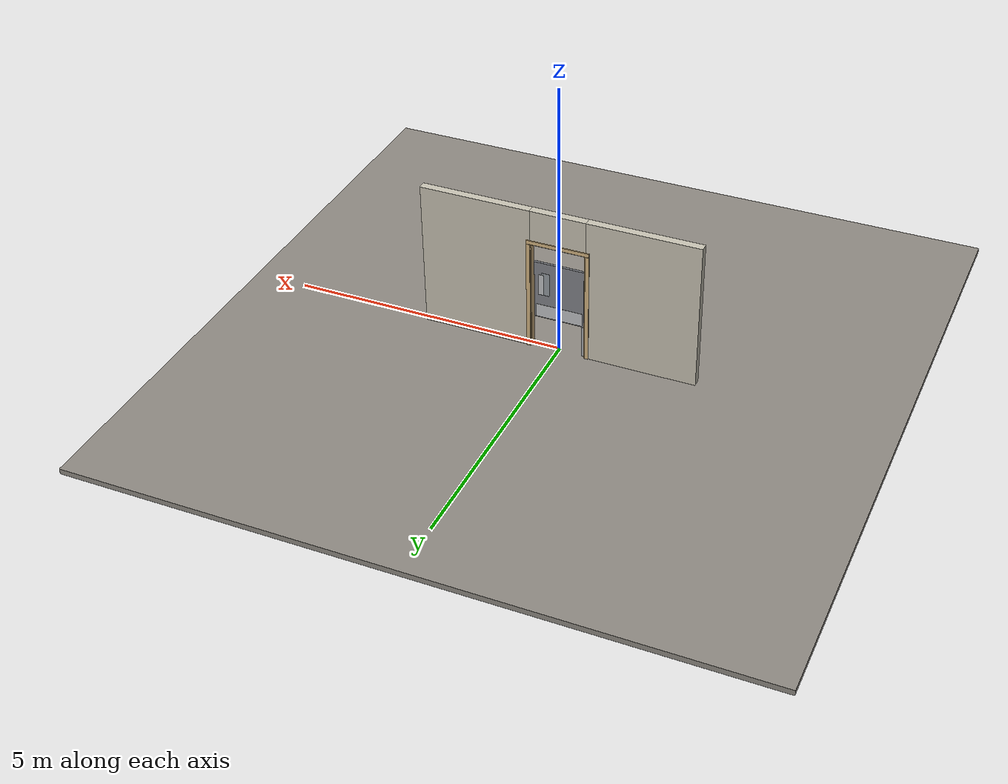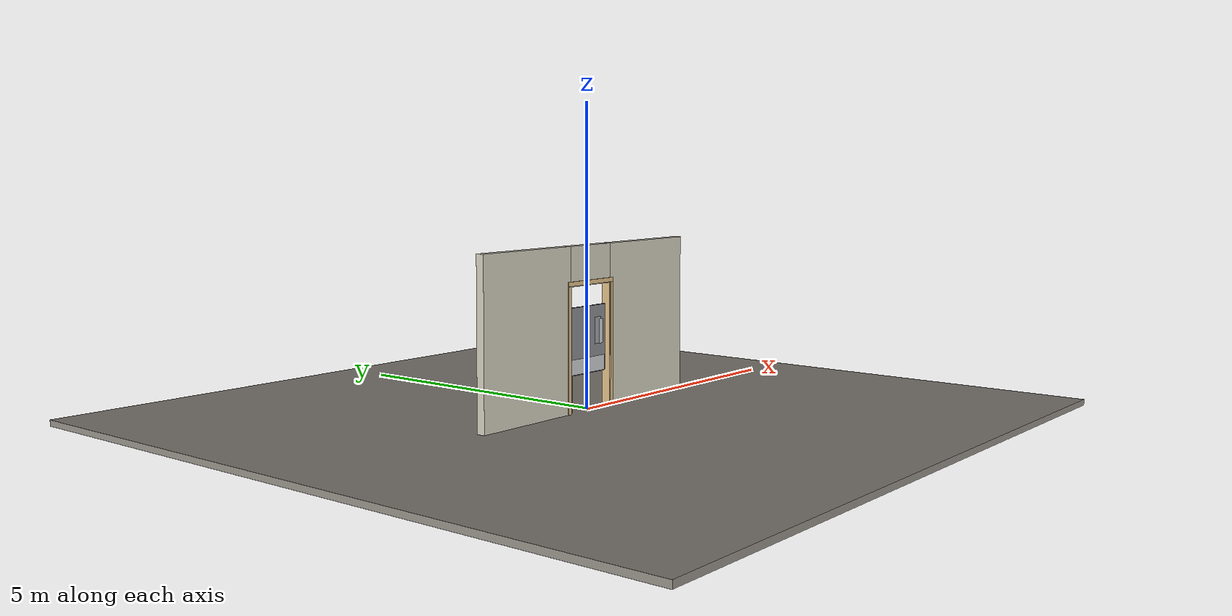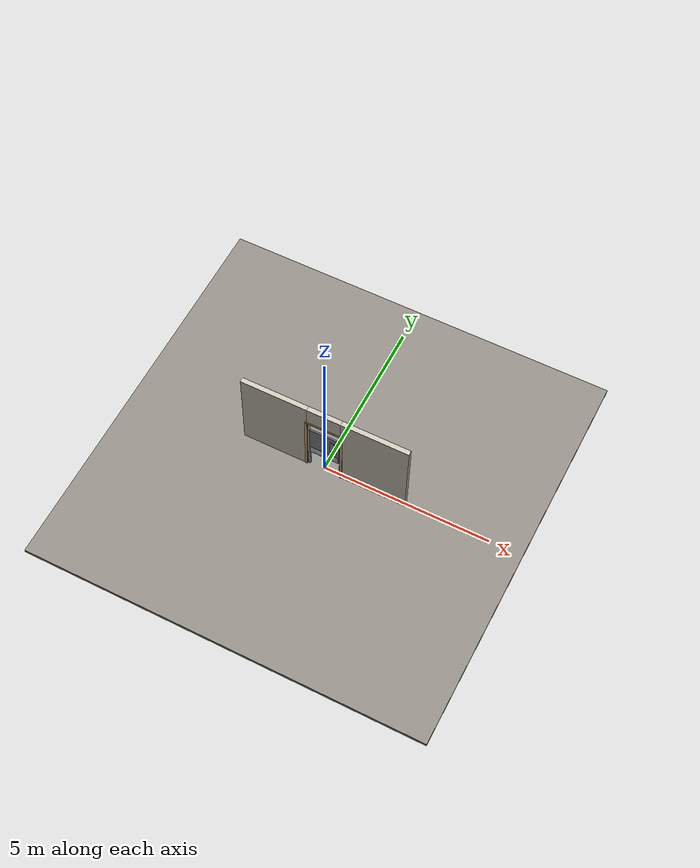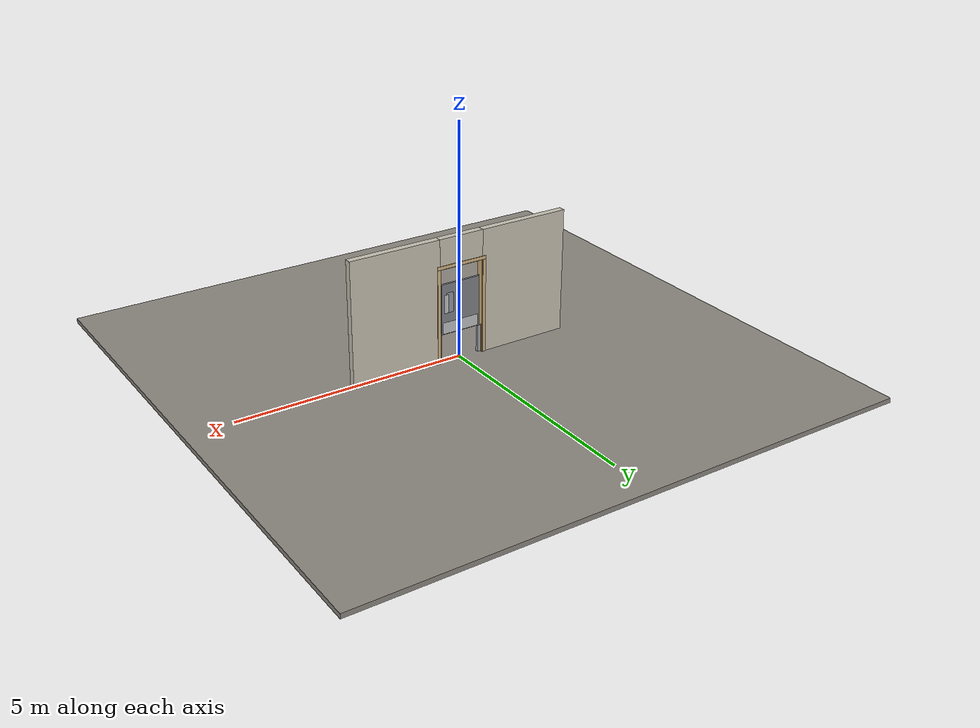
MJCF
<?xml version="1.0" ?>
<mujoco model="db0299_saloon_full">
  <compiler angle="radian" meshdir="../../hardware" texturedir="../../textures" autolimits="true" inertiafromgeom="false"/>
  <option timestep="0.002" integrator="implicitfast" cone="elliptic" impratio="10" noslip_iterations="3">
    <flag multiccd="enable"/>
  </option>
  <size memory="16M"/>
  <default>
    <geom condim="4" solref="0.005 1" solimp="0.95 0.99 0.001"/>
    <joint solreflimit="0.005 1" solimplimit="0.95 0.99 0.001"/>
    <tendon solreflimit="0.005 1"/>
    <equality solref="0.002 1"/>
  </default>
  <visual>
    <headlight ambient="0.4 0.4 0.4" diffuse="0.7 0.7 0.7" specular="0.2 0.2 0.2"/>
    <quality shadowsize="4096"/>
    <map znear="0.01" zfar="60"/>
  </visual>
  <asset>
    <material name="mat_floor" rgba="0.55 0.53 0.5 1" specular="0.2" shininess="0.15" reflectance="0"/>
    <material name="mat_wall" rgba="0.78 0.76 0.7 1" specular="0.2" shininess="0.1" reflectance="0"/>
    <material name="mat_frame" rgba="0.82 0.7 0.5 1" specular="0.2" shininess="0.45" reflectance="0"/>
    <material name="mat_leaf" rgba="0.5 0.51 0.53 1" specular="0.2" shininess="0.58" reflectance="0"/>
    <material name="mat_glass" rgba="0.85 0.92 0.95 0.25" specular="0.2" shininess="0.95" reflectance="0.1"/>
    <material name="mat_hinge" rgba="0.65 0.66 0.68 1" specular="0.74" shininess="0.5" reflectance="0.36"/>
    <material name="mat_op_stainless" rgba="0.75 0.76 0.77 1" specular="0.8" shininess="0.65" reflectance="0.4"/>
    <material name="mat_kick" rgba="0.75 0.76 0.77 1" specular="0.8" shininess="0.65" reflectance="0.4"/>
    <texture name="skybox" type="skybox" builtin="gradient" rgb1="0.6 0.7 0.85" rgb2="0.9 0.92 0.95" width="256" height="256"/>
  </asset>
  <worldbody>
    <light name="sun" pos="1.5 -2.5 4" dir="-0.3 0.5 -0.8" directional="true" diffuse="0.8 0.8 0.8" specular="0.3 0.3 0.3" castshadow="true"/>
    <light name="fill" pos="-1.5 2.5 3" dir="0.3 -0.5 -0.7" directional="true" diffuse="0.35 0.35 0.4" castshadow="false"/>
    <camera name="robot_view" pos="0 -2.546875 1.738125" xyaxes="1 0 0 0 0.26963 0.962964" fovy="52"/>
    <camera name="far_view" pos="0 2.546875 1.738125" xyaxes="-1 0 0 0 -0.26963 0.962964" fovy="52"/>
    <camera name="iso" pos="1.935625 -2.139375 2.145625" xyaxes="0.741536 0.670913 0 -0.242917 0.268487 0.932151" fovy="46"/>
    <camera name="detail_handle" pos="0.48 -0.8 1.28" xyaxes="0.97561 0.219512 0 -0.070934 0.315262 0.94635" fovy="38"/>
    <geom name="floor" type="box" size="6 6 0.05" pos="0 0 -0.05" material="mat_floor" group="0" contype="1" conaffinity="1" friction="0.8 0.005 0.0001" density="2400"/>
    <geom name="wall_left" type="box" size="0.9985 0.0725 1.35" pos="-1.5015 0 1.35" material="mat_wall" group="0" contype="1" conaffinity="1" friction="0.6 0.005 0.0001" density="800"/>
    <geom name="wall_right" type="box" size="0.9985 0.0725 1.35" pos="1.5015 0 1.35" material="mat_wall" group="0" contype="1" conaffinity="1" friction="0.6 0.005 0.0001" density="800"/>
    <geom name="wall_header" type="box" size="0.503 0.0725 0.3155" pos="0 0 2.3845" material="mat_wall" group="0" contype="1" conaffinity="1" friction="0.6 0.005 0.0001" density="800"/>
    <geom name="jamb_hinge" type="box" size="0.0095 0.0725 1.025" pos="-0.4935 0 1.025" material="mat_frame" group="0" contype="1" conaffinity="1" friction="0.6 0.005 0.0001" density="400"/>
    <geom name="jamb_strike" type="box" size="0.0095 0.0725 1.025" pos="0.4935 0 1.025" material="mat_frame" group="0" contype="1" conaffinity="1" friction="0.6 0.005 0.0001" density="400"/>
    <geom name="stud_strike" type="box" size="0.015 0.0725 1.025" pos="0.518 0 1.025" material="mat_wall" group="0" contype="1" conaffinity="1" friction="0.6 0.005 0.0001" density="500"/>
    <geom name="jamb_head" type="box" size="0.518 0.0725 0.0095" pos="0.015 0 2.0595" material="mat_frame" group="0" contype="1" conaffinity="1" friction="0.6 0.005 0.0001" density="400"/>
    <geom name="head_stud" type="box" size="0.518 0.0725 0.015" pos="0.015 0 2.084" material="mat_wall" group="0" contype="1" conaffinity="1" friction="0.6 0.005 0.0001" density="500"/>
    <geom name="casing_l_n" type="box" size="0.035 0.008 1.0345" pos="-0.533 -0.0805 1.025" material="mat_frame" group="2" contype="0" conaffinity="0" density="400"/>
    <geom name="casing_r_n" type="box" size="0.035 0.008 1.0345" pos="0.533 -0.0805 1.025" material="mat_frame" group="2" contype="0" conaffinity="0" density="400"/>
    <geom name="casing_h_n" type="box" size="0.568 0.008 0.035" pos="0 -0.0805 2.099" material="mat_frame" group="2" contype="0" conaffinity="0" density="400"/>
    <geom name="casing_l_p" type="box" size="0.035 0.008 1.0345" pos="-0.533 0.0805 1.025" material="mat_frame" group="2" contype="0" conaffinity="0" density="400"/>
    <geom name="casing_r_p" type="box" size="0.035 0.008 1.0345" pos="0.533 0.0805 1.025" material="mat_frame" group="2" contype="0" conaffinity="0" density="400"/>
    <geom name="casing_h_p" type="box" size="0.568 0.008 0.035" pos="0 0.0805 2.099" material="mat_frame" group="2" contype="0" conaffinity="0" density="400"/>
    <geom name="pivot_bottom_socket" type="box" size="0.035 0.035 0.304" pos="-0.456 0 0.294" material="mat_hinge" group="1" contype="0" conaffinity="0" density="7850"/>
    <site name="approach_point" pos="0 -1.5 0" quat="1 0 0 0" size="0.05" rgba="0.2 0.9 0.2 0.5" group="4"/>
    <site name="goal_point" pos="0 1.5 0" quat="1 0 0 0" size="0.05" rgba="0.2 0.9 0.2 0.5" group="4"/>
    <site name="door_plane_center" pos="0 0 1.025" quat="1 0 0 0" size="0.02" rgba="0.2 0.9 0.2 0.5" group="4"/>
    <body name="leaf" pos="-0.484 0 0">
      <inertial pos="0.486102 0 1.093448" mass="33.9244" quat="0.490702 -0.490702 0.509128 0.509128" diaginertia="2.299770537 3.639121651 5.923802755"/>
      <joint name="leaf_hinge" type="hinge" axis="0 0 1" pos="0.028 0 0" limited="true" range="-1.570796 1.570796" damping="0.880341" frictionloss="4.167952" stiffness="6.2" springref="0" armature="0.02"/>
      <geom name="leaf_slab" type="box" size="0.45 0.022 0.55" pos="0.478 0 1.15" material="mat_leaf" group="0" contype="1" conaffinity="1" friction="0.35 0.005 0.0001" density="1"/>
      <geom name="leaf_glass_0" type="box" size="0.075 0.0228 0.22" pos="0.724 0 1.282" material="mat_glass" group="1" contype="0" conaffinity="0" density="1"/>
      <geom name="pivot_bottom" type="cylinder" size="0.014 0.004" pos="0.028 0 0.595" material="mat_hinge" group="1" contype="0" conaffinity="0" density="7850"/>
      <geom name="pivot_top" type="cylinder" size="0.014 0.004" pos="0.028 0 1.704" material="mat_hinge" group="1" contype="0" conaffinity="0" density="7850"/>
      <geom name="leaf_push_plate_n" type="box" size="0.05 0.0008 0.2" pos="0.808 -0.0228 1.26" material="mat_op_stainless" group="1" contype="0" conaffinity="0" density="7900"/>
      <geom name="leaf_push_plate_p" type="box" size="0.05 0.0008 0.2" pos="0.808 0.0228 1.26" material="mat_op_stainless" group="1" contype="0" conaffinity="0" density="7900"/>
      <geom name="leaf_kick_n" type="box" size="0.42 0.0008 0.125" pos="0.478 -0.0228 0.735" material="mat_kick" group="2" contype="0" conaffinity="0" density="7900"/>
      <geom name="leaf_kick_p" type="box" size="0.42 0.0008 0.125" pos="0.478 0.0228 0.735" material="mat_kick" group="2" contype="0" conaffinity="0" density="7900"/>
      <site name="leaf_push_plate_push_n" pos="0.808 -0.022 1.26" quat="1 0 0 0" size="0.012" rgba="0.2 0.9 0.2 0.5" group="4"/>
      <site name="leaf_push_plate_push_p" pos="0.808 0.022 1.26" quat="1 0 0 0" size="0.012" rgba="0.2 0.9 0.2 0.5" group="4"/>
      <site name="leaf_push_site" pos="0.703 -0.022 1.26" quat="1 0 0 0" size="0.015" rgba="0.2 0.9 0.2 0.5" group="4"/>
    </body>
  </worldbody>
  <sensor>
    <jointpos name="leaf_hinge_pos" joint="leaf_hinge"/>
    <jointvel name="leaf_hinge_vel" joint="leaf_hinge"/>
  </sensor>
</mujoco>
